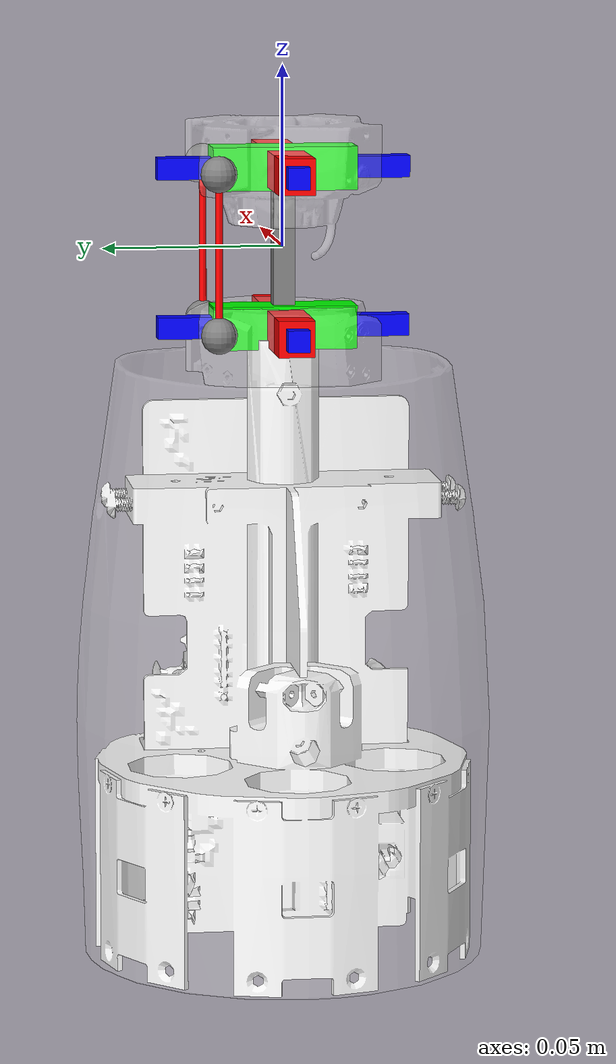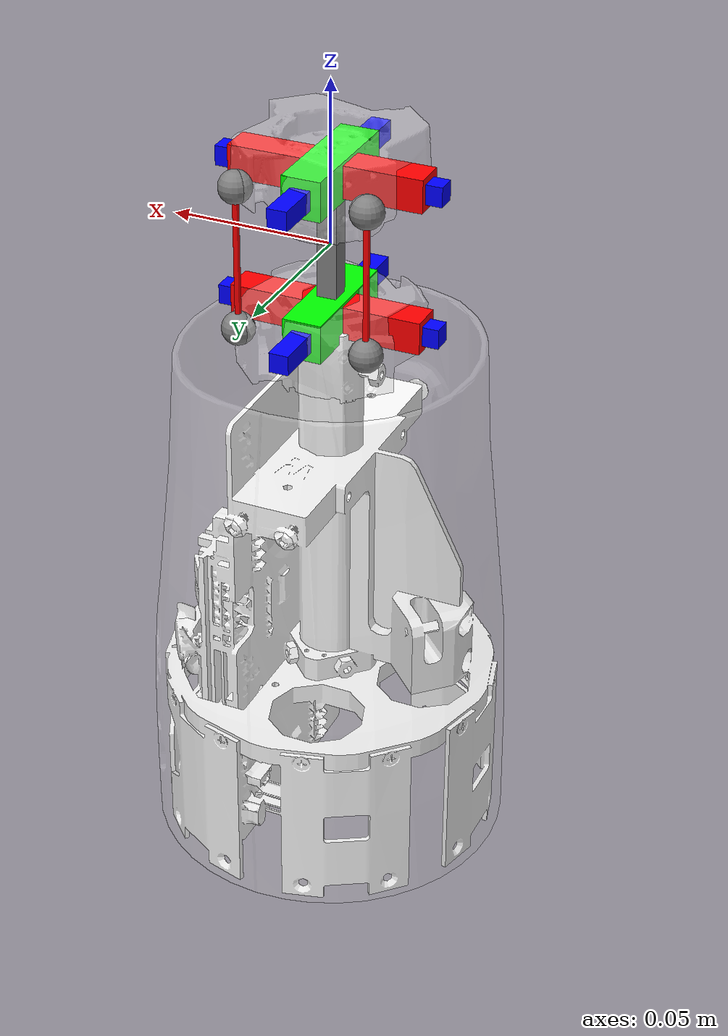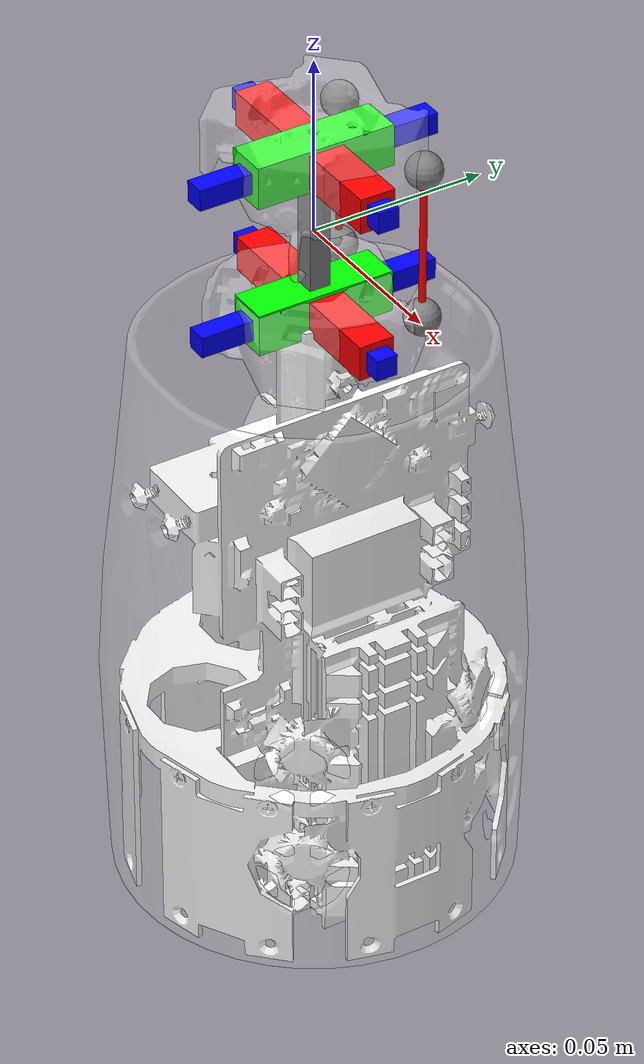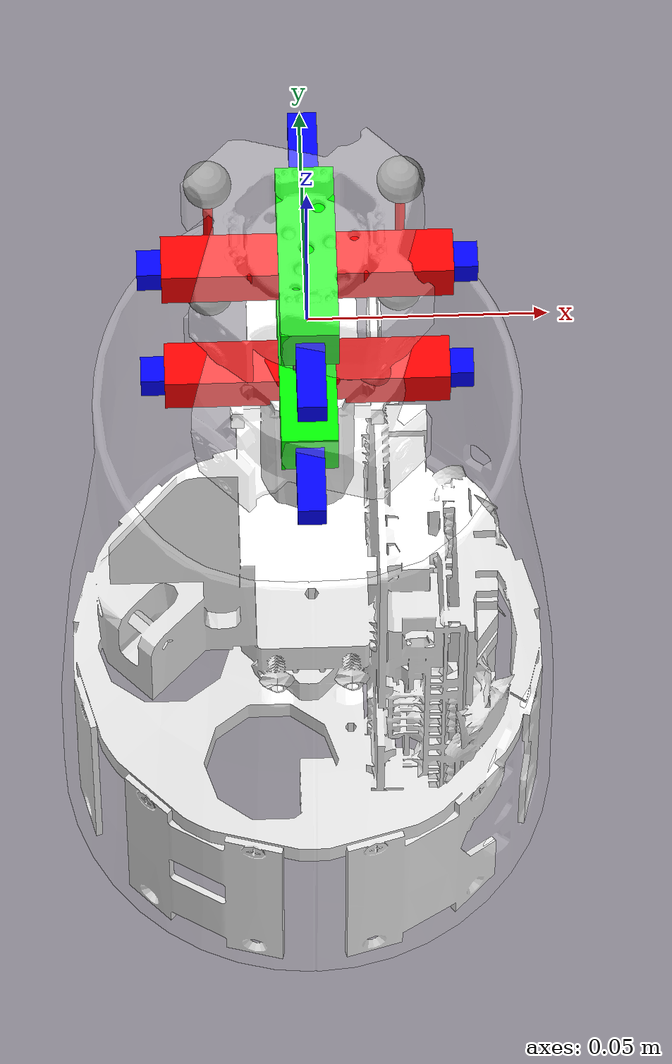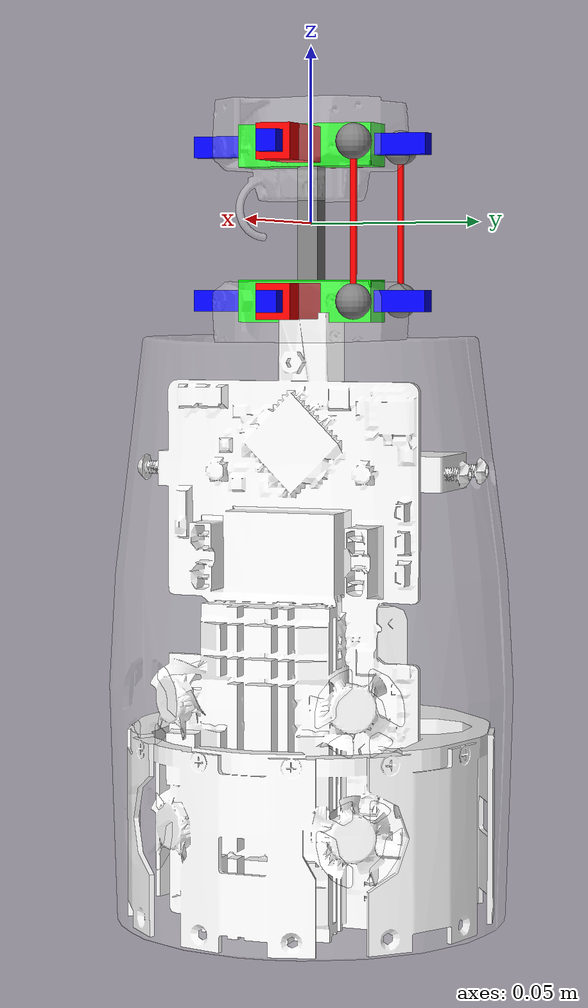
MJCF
<mujoco>

<default>
    <geom density="1000"/>
</default>

<compiler angle="radian" meshdir="." autolimits="true"/>

  <!-- import our stl files -->
  <asset>
      <mesh file="base0.stl" scale="0.001 0.001 0.001"/>
      <mesh file="wristbase.stl" scale="0.001 0.001 0.001"/>
      <mesh file="lever1.stl" scale="0.001 0.001 0.001"/>
      <mesh file="winkel.stl" scale="0.001 0.001 0.001"/>
      <mesh file="lever_m.stl" scale="0.001 0.001 0.001"/>
      <mesh file="base2_met.stl" scale="0.001 0.001 0.001"/>
      <mesh file="base2_smooth.stl" name= "base2" scale="0.001 0.001 0.001"/>
      <mesh file="cover.stl" scale="0.001 0.001 0.001"/>

  </asset>

  <worldbody>
    <!-- set up a light pointing down on the robot -->
    <light directional="true" pos="-0.5 0.5 3" dir="0 0 -1" />
    <!-- add a floor so we don't stare off into the abyss -->
    <geom name="floor" pos="0 0 -1" size="1 1 1" type="plane" rgba="1 0.83 0.61 0.5"/>

    <!--rotate 90° around x quat="0.707 0 0 0.707"-->
    <body name="base" pos="0 0 0">
      <!-- no collision: contype="0" conaffinity="0" -->
      <geom name="base" type="mesh" mesh="base0" rgba="1 1 1 1" contype="0" conaffinity="0"/>
      <geom name="wristbase" type="mesh" mesh="wristbase" rgba="1 1 1 .3" contype="0" conaffinity="0"/>
      <geom name="cover" type="mesh" mesh="cover" rgba="1 1 1 .1" contype="0" conaffinity="0"/>
      <geom name="baseframex" type="box" size=".003" fromto="-.035 0 -.022 .035 0 -.022"  rgba="0 0 1 1"  contype="0" conaffinity="0"/>
      <geom name="baseframey" type="box" size=".003" fromto="0 -.035 -.022 0 .035 -.022"  rgba="0 0 1 1"  contype="0" conaffinity="0"/>
	  <!-- Define site for tendon_x_end within base2 body -->
	  <site name="tendon_x_start" pos="0.02 .02 -.022"/>
	  <site name="tendon_y_start" pos="-0.02 0.02 -.022"/>
      <body name="xjoint1" pos="0 0 0" >
        <geom name="xjoint1" type="box" size=".005" fromto="-.03 0 -.022 .03 0 -.022"  rgba="1 0 0 1"  contype="0" conaffinity="0"/>
        <joint name="xjoint1" type="hinge" axis="1 0 0" damping="0.05" pos="0 0 -.022" range="-0.7854 0.7854" />

          <body name="yjoint1" pos="0 0 0">
            <geom name="connector" type="box" size=".003" fromto="0 0  -.022 0 0 .022"  rgba=".5 .5 .5 1"  contype="0" conaffinity="0"/>
            <geom name="yjoint1" type="box" size=".006" fromto="0 0.02  -.022 0 -0.02 -.022"  rgba="0 1 0 1"  contype="0" conaffinity="0"/>
            <joint name="yjoint1" type="hinge" axis="0 1 0" damping="0.05" pos="0 0 -.022" range="-0.7854 0.7854"/>
            <geom name="yjoint2" type="box" size=".006" fromto="0 0.02  .022 0 -0.02 .022"  rgba="0 1 0 1"  contype="0" conaffinity="0"/>

            <body name="yjoint2" pos="0 0 0">
              <joint name="yjoint2" type="hinge" axis="0 1 0" damping="0.05" pos="0 0 .022"/>
              <geom name="xjoint2" type="box" size=".005" fromto="-.03 0 .022 .03 0 .022"  rgba="1 0 0 1"  contype="0" conaffinity="0" />
              <body name="base2" pos="0 0 0">

                <joint name="xjoint2" type="hinge" axis="1 0 0" damping="0.05" pos="0 0 .022"/>
                <!-- no collision: contype="0" conaffinity="0" -->
                <geom name="base2" type="mesh" mesh="base2" rgba="1 1 1 .3" contype="0" conaffinity="0" mass="0"/>
                <geom name="endframex" type="box" size=".003" fromto="-.035 0 .022 .035 0 .022"  rgba="0 0 1 1"  contype="0" conaffinity="0"/>
                <geom name="endframey" type="box" size=".003" fromto="0 -.035 .022 0 .035 .022"  rgba="0 0 1 1"  contype="0" conaffinity="0"/>
				<!-- Define site for tendon_x_end within base2 body -->
				<site name="tendon_x_end" pos="0.02 .02 0.022"/>
				<site name="tendon_y_end" pos="-.02 .02 0.022"/>
              </body>
            </body>
          </body>
      </body>

    </body>

  </worldbody>

  <!-- add constrains to make joint axis move together -->
  <equality>
    <joint joint1="xjoint1" joint2="xjoint2" polycoef="0 1 0 0 0" solref="0.002 1" solimp="0.8 0.8 0.01"/>
    <joint joint1="yjoint1" joint2="yjoint2" polycoef="0 1 0 0 0" solref="0.002 1" solimp="0.8 0.8 0.01"/>
    <!-- https://mujoco.readthedocs.io/en/latest/modeling.html -->
  </equality>

<!-- Define Tendons for Cable Actuation -->
<tendon>
    <spatial name="tendon_x" width="0.001" rgba="1 0 0 1">
        <site site="tendon_x_start"/>
        <site site="tendon_x_end"/>
    </spatial>
    <spatial name="tendon_y" width="0.001" rgba="1 0 0 1">
        <site site="tendon_y_start"/>
        <site site="tendon_y_end"/>
    </spatial>
</tendon>

<actuator>
  <position name="motor_x" tendon="tendon_x" ctrlrange="0 .1" kp="1000"/>
  <position name="motor_y" tendon="tendon_y" ctrlrange="0 .1" kp="1000"/>
</actuator>

</mujoco>
